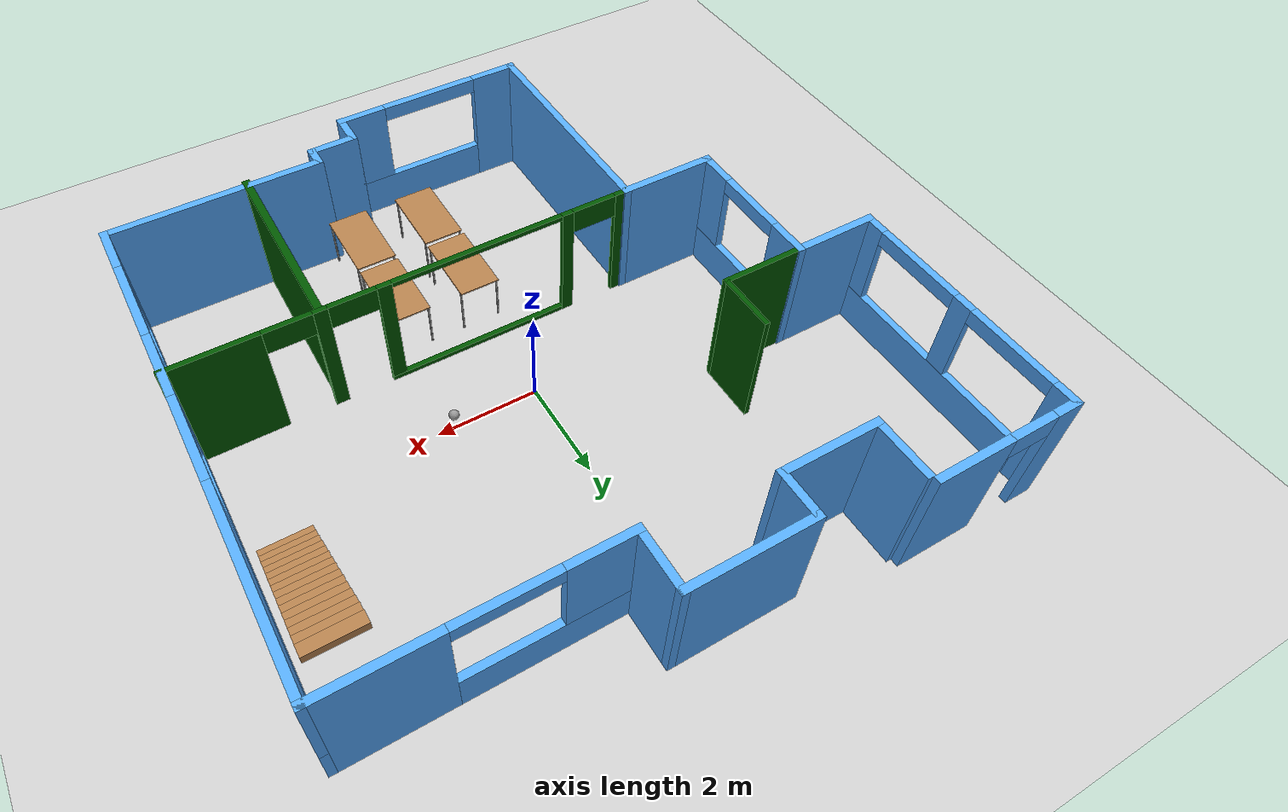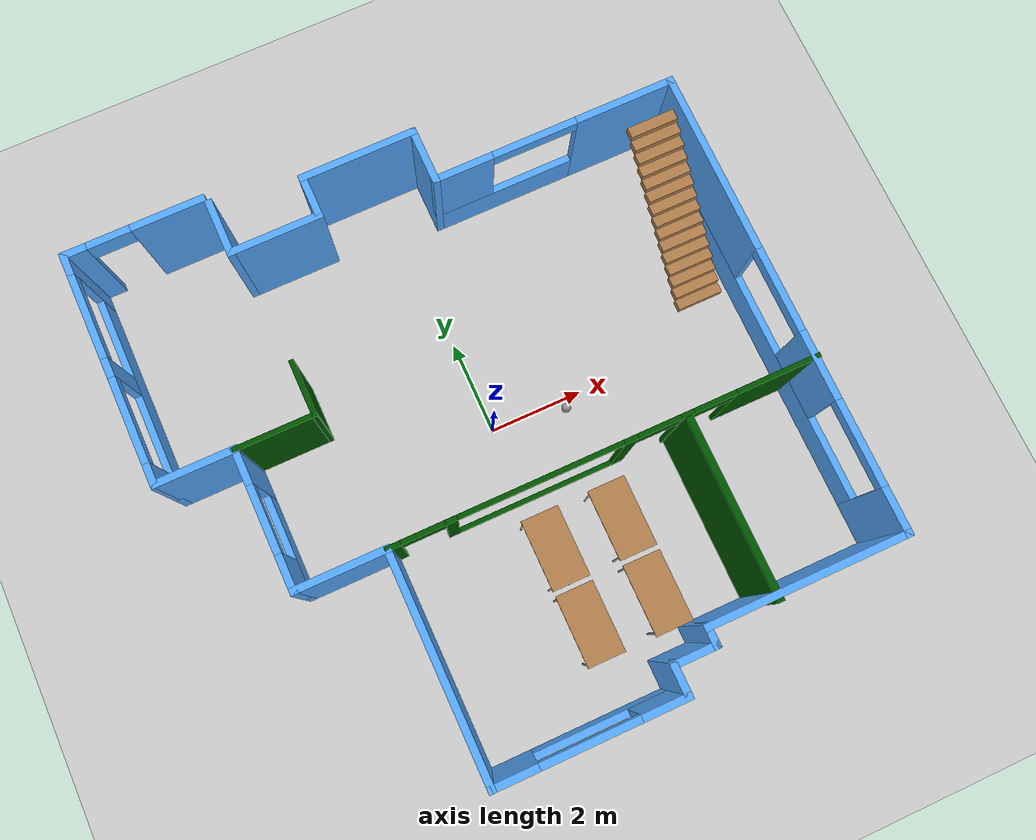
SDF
<sdf version="1.6">
 <world name="default">
  <model name="ground_plane">
   <static>1</static>
   <link name="link">
    <collision name="collision">
     <geometry><plane><normal>0 0 1</normal><size>100 100</size></plane></geometry>
     <surface>
      <contact><collide_bitmask>65535</collide_bitmask></contact>
      <friction><ode><mu>100</mu><mu2>50</mu2></ode></friction>
     </surface>
    </collision>
    <visual name="visual">
     <cast_shadows>0</cast_shadows>
     <geometry><plane><normal>0 0 1</normal><size>100 100</size></plane></geometry>
     <material>
      <script><uri>file://media/materials/scripts/gazebo.material</uri><name>Gazebo/Grey</name></script>
     </material>
    </visual>
   </link>
  </model>
  <model name="office_model">
   <pose>-0.208352 -0.072937 0 0 -0 0</pose>
   <link name="Stairs_0">
    <visual name="Stairs_0_Visual_0">
     <pose>5.38185 0.909839 0.083333 0 -0 -3.14159</pose>
     <geometry><box><size>1 0.218418 0.166667</size></box></geometry>
     <material>
      <script><uri>file://media/materials/scripts/gazebo.material</uri><name>Gazebo/Wood</name></script>
      <ambient>1 1 1 1</ambient>
     </material>
     <meta><layer>0</layer></meta>
    </visual>
    <collision name="Stairs_0_Collision_0">
     <geometry><box><size>1 0.218418 0.166667</size></box></geometry>
     <pose>5.38185 0.909839 0.083333 0 -0 -3.14159</pose>
    </collision>
    <visual name="Stairs_0_Visual_1">
     <pose>5.38185 1.12826 0.25 0 -0 -3.14159</pose>
     <geometry><box><size>1 0.218418 0.166667</size></box></geometry>
     <material>
      <script><uri>file://media/materials/scripts/gazebo.material</uri><name>Gazebo/Wood</name></script>
      <ambient>1 1 1 1</ambient>
     </material>
     <meta><layer>0</layer></meta>
    </visual>
    <collision name="Stairs_0_Collision_1">
     <geometry><box><size>1 0.218418 0.166667</size></box></geometry>
     <pose>5.38185 1.12826 0.25 0 -0 -3.14159</pose>
    </collision>
    <visual name="Stairs_0_Visual_2">
     <pose>5.38185 1.34668 0.416667 0 -0 -3.14159</pose>
     <geometry><box><size>1 0.218418 0.166667</size></box></geometry>
     <material>
      <script><uri>file://media/materials/scripts/gazebo.material</uri><name>Gazebo/Wood</name></script>
      <ambient>1 1 1 1</ambient>
     </material>
     <meta><layer>0</layer></meta>
    </visual>
    <collision name="Stairs_0_Collision_2">
     <geometry><box><size>1 0.218418 0.166667</size></box></geometry>
     <pose>5.38185 1.34668 0.416667 0 -0 -3.14159</pose>
    </collision>
    <visual name="Stairs_0_Visual_3">
     <pose>5.38185 1.56509 0.583333 0 -0 -3.14159</pose>
     <geometry><box><size>1 0.218418 0.166667</size></box></geometry>
     <material>
      <script><uri>file://media/materials/scripts/gazebo.material</uri><name>Gazebo/Wood</name></script>
      <ambient>1 1 1 1</ambient>
     </material>
     <meta><layer>0</layer></meta>
    </visual>
    <collision name="Stairs_0_Collision_3">
     <geometry><box><size>1 0.218418 0.166667</size></box></geometry>
     <pose>5.38185 1.56509 0.583333 0 -0 -3.14159</pose>
    </collision>
    <visual name="Stairs_0_Visual_4">
     <pose>5.38185 1.78351 0.75 0 -0 -3.14159</pose>
     <geometry><box><size>1 0.218418 0.166667</size></box></geometry>
     <material>
      <script><uri>file://media/materials/scripts/gazebo.material</uri><name>Gazebo/Wood</name></script>
      <ambient>1 1 1 1</ambient>
     </material>
     <meta><layer>0</layer></meta>
    </visual>
    <collision name="Stairs_0_Collision_4">
     <geometry><box><size>1 0.218418 0.166667</size></box></geometry>
     <pose>5.38185 1.78351 0.75 0 -0 -3.14159</pose>
    </collision>
    <visual name="Stairs_0_Visual_5">
     <pose>5.38185 2.00193 0.916667 0 -0 -3.14159</pose>
     <geometry><box><size>1 0.218418 0.166667</size></box></geometry>
     <material>
      <script><uri>file://media/materials/scripts/gazebo.material</uri><name>Gazebo/Wood</name></script>
      <ambient>1 1 1 1</ambient>
     </material>
     <meta><layer>0</layer></meta>
    </visual>
    <collision name="Stairs_0_Collision_5">
     <geometry><box><size>1 0.218418 0.166667</size></box></geometry>
     <pose>5.38185 2.00193 0.916667 0 -0 -3.14159</pose>
    </collision>
    <visual name="Stairs_0_Visual_6">
     <pose>5.38185 2.22035 1.08333 0 -0 -3.14159</pose>
     <geometry><box><size>1 0.218418 0.166667</size></box></geometry>
     <material>
      <script><uri>file://media/materials/scripts/gazebo.material</uri><name>Gazebo/Wood</name></script>
      <ambient>1 1 1 1</ambient>
     </material>
     <meta><layer>0</layer></meta>
    </visual>
    <collision name="Stairs_0_Collision_6">
     <geometry><box><size>1 0.218418 0.166667</size></box></geometry>
     <pose>5.38185 2.22035 1.08333 0 -0 -3.14159</pose>
    </collision>
    <visual name="Stairs_0_Visual_7">
     <pose>5.38185 2.43877 1.25 0 -0 -3.14159</pose>
     <geometry><box><size>1 0.218418 0.166667</size></box></geometry>
     <material>
      <script><uri>file://media/materials/scripts/gazebo.material</uri><name>Gazebo/Wood</name></script>
      <ambient>1 1 1 1</ambient>
     </material>
     <meta><layer>0</layer></meta>
    </visual>
    <collision name="Stairs_0_Collision_7">
     <geometry><box><size>1 0.218418 0.166667</size></box></geometry>
     <pose>5.38185 2.43877 1.25 0 -0 -3.14159</pose>
    </collision>
    <visual name="Stairs_0_Visual_8">
     <pose>5.38185 2.65718 1.41667 0 -0 -3.14159</pose>
     <geometry><box><size>1 0.218418 0.166667</size></box></geometry>
     <material>
      <script><uri>file://media/materials/scripts/gazebo.material</uri><name>Gazebo/Wood</name></script>
      <ambient>1 1 1 1</ambient>
     </material>
     <meta><layer>0</layer></meta>
    </visual>
    <collision name="Stairs_0_Collision_8">
     <geometry><box><size>1 0.218418 0.166667</size></box></geometry>
     <pose>5.38185 2.65718 1.41667 0 -0 -3.14159</pose>
    </collision>
    <visual name="Stairs_0_Visual_9">
     <pose>5.38185 2.8756 1.58333 0 -0 -3.14159</pose>
     <geometry><box><size>1 0.218418 0.166667</size></box></geometry>
     <material>
      <script><uri>file://media/materials/scripts/gazebo.material</uri><name>Gazebo/Wood</name></script>
      <ambient>1 1 1 1</ambient>
     </material>
     <meta><layer>0</layer></meta>
    </visual>
    <collision name="Stairs_0_Collision_9">
     <geometry><box><size>1 0.218418 0.166667</size></box></geometry>
     <pose>5.38185 2.8756 1.58333 0 -0 -3.14159</pose>
    </collision>
    <visual name="Stairs_0_Visual_10">
     <pose>5.38185 3.09402 1.75 0 -0 -3.14159</pose>
     <geometry><box><size>1 0.218418 0.166667</size></box></geometry>
     <material>
      <script><uri>file://media/materials/scripts/gazebo.material</uri><name>Gazebo/Wood</name></script>
      <ambient>1 1 1 1</ambient>
     </material>
     <meta><layer>0</layer></meta>
    </visual>
    <collision name="Stairs_0_Collision_10">
     <geometry><box><size>1 0.218418 0.166667</size></box></geometry>
     <pose>5.38185 3.09402 1.75 0 -0 -3.14159</pose>
    </collision>
    <visual name="Stairs_0_Visual_11">
     <pose>5.38185 3.31244 1.91667 0 -0 -3.14159</pose>
     <geometry><box><size>1 0.218418 0.166667</size></box></geometry>
     <material>
      <script><uri>file://media/materials/scripts/gazebo.material</uri><name>Gazebo/Wood</name></script>
      <ambient>1 1 1 1</ambient>
     </material>
     <meta><layer>0</layer></meta>
    </visual>
    <collision name="Stairs_0_Collision_11">
     <geometry><box><size>1 0.218418 0.166667</size></box></geometry>
     <pose>5.38185 3.31244 1.91667 0 -0 -3.14159</pose>
    </collision>
    <visual name="Stairs_0_Visual_12">
     <pose>5.38185 3.53086 2.08333 0 -0 -3.14159</pose>
     <geometry><box><size>1 0.218418 0.166667</size></box></geometry>
     <material>
      <script><uri>file://media/materials/scripts/gazebo.material</uri><name>Gazebo/Wood</name></script>
      <ambient>1 1 1 1</ambient>
     </material>
     <meta><layer>0</layer></meta>
    </visual>
    <collision name="Stairs_0_Collision_12">
     <geometry><box><size>1 0.218418 0.166667</size></box></geometry>
     <pose>5.38185 3.53086 2.08333 0 -0 -3.14159</pose>
    </collision>
    <visual name="Stairs_0_Visual_13">
     <pose>5.38185 3.74927 2.25 0 -0 -3.14159</pose>
     <geometry><box><size>1 0.218418 0.166667</size></box></geometry>
     <material>
      <script><uri>file://media/materials/scripts/gazebo.material</uri><name>Gazebo/Wood</name></script>
      <ambient>1 1 1 1</ambient>
     </material>
     <meta><layer>0</layer></meta>
    </visual>
    <collision name="Stairs_0_Collision_13">
     <geometry><box><size>1 0.218418 0.166667</size></box></geometry>
     <pose>5.38185 3.74927 2.25 0 -0 -3.14159</pose>
    </collision>
    <visual name="Stairs_0_Visual_14">
     <pose>5.38185 3.96769 2.41667 0 -0 -3.14159</pose>
     <geometry><box><size>1 0.218418 0.166667</size></box></geometry>
     <material>
      <script><uri>file://media/materials/scripts/gazebo.material</uri><name>Gazebo/Wood</name></script>
      <ambient>1 1 1 1</ambient>
     </material>
     <meta><layer>0</layer></meta>
    </visual>
    <collision name="Stairs_0_Collision_14">
     <geometry><box><size>1 0.218418 0.166667</size></box></geometry>
     <pose>5.38185 3.96769 2.41667 0 -0 -3.14159</pose>
    </collision>
   </link>
   <link name="Wall_0">
    <pose>-6.13735 3.72502 0 0 0 -1.5708</pose>
    <visual name="Wall_0_Visual_0">
     <pose>-2.24902 0 1.25 0 -0 0</pose>
     <geometry><box><size>0.501953 0.15 2.5</size></box></geometry>
     <material>
      <script><uri>file://media/materials/scripts/gazebo.material</uri><name>Gazebo/Grey</name></script>
      <ambient>0.333333 0.666667 1 1</ambient>
     </material>
     <meta><layer>0</layer></meta>
    </visual>
    <collision name="Wall_0_Collision_0">
     <geometry><box><size>0.501953 0.15 2.5</size></box></geometry>
     <pose>-2.24902 0 1.25 0 -0 0</pose>
    </collision>
    <visual name="Wall_0_Visual_1">
     <pose>0.250976 0 0.4 0 -0 0</pose>
     <geometry><box><size>4.49805 0.15 0.8</size></box></geometry>
     <material>
      <script><uri>file://media/materials/scripts/gazebo.material</uri><name>Gazebo/Grey</name></script>
      <ambient>0.333333 0.666667 1 1</ambient>
     </material>
     <meta><layer>0</layer></meta>
    </visual>
    <collision name="Wall_0_Collision_1">
     <geometry><box><size>4.49805 0.15 0.8</size></box></geometry>
     <pose>0.250976 0 0.4 0 -0 0</pose>
    </collision>
    <visual name="Wall_0_Visual_2">
     <pose>0.001649 0 1.65 0 -0 0</pose>
     <geometry><box><size>0.399392 0.15 1.7</size></box></geometry>
     <material>
      <script><uri>file://media/materials/scripts/gazebo.material</uri><name>Gazebo/Grey</name></script>
      <ambient>0.333333 0.666667 1 1</ambient>
     </material>
     <meta><layer>0</layer></meta>
    </visual>
    <collision name="Wall_0_Collision_2">
     <geometry><box><size>0.399392 0.15 1.7</size></box></geometry>
     <pose>0.001649 0 1.65 0 -0 0</pose>
    </collision>
    <visual name="Wall_0_Visual_3">
     <pose>2.25067 0 1.65 0 -0 0</pose>
     <geometry><box><size>0.498655 0.15 1.7</size></box></geometry>
     <material>
      <script><uri>file://media/materials/scripts/gazebo.material</uri><name>Gazebo/Grey</name></script>
      <ambient>0.333333 0.666667 1 1</ambient>
     </material>
     <meta><layer>0</layer></meta>
    </visual>
    <collision name="Wall_0_Collision_3">
     <geometry><box><size>0.498655 0.15 1.7</size></box></geometry>
     <pose>2.25067 0 1.65 0 -0 0</pose>
    </collision>
    <visual name="Wall_0_Visual_4">
     <pose>-1.09805 0 2.35 0 -0 0</pose>
     <geometry><box><size>1.8 0.15 0.3</size></box></geometry>
     <material>
      <script><uri>file://media/materials/scripts/gazebo.material</uri><name>Gazebo/Grey</name></script>
      <ambient>0.333333 0.666667 1 1</ambient>
     </material>
     <meta><layer>0</layer></meta>
    </visual>
    <collision name="Wall_0_Collision_4">
     <geometry><box><size>1.8 0.15 0.3</size></box></geometry>
     <pose>-1.09805 0 2.35 0 -0 0</pose>
    </collision>
    <visual name="Wall_0_Visual_5">
     <pose>1.10135 0 2.35 0 -0 0</pose>
     <geometry><box><size>1.8 0.15 0.3</size></box></geometry>
     <material>
      <script><uri>file://media/materials/scripts/gazebo.material</uri><name>Gazebo/Grey</name></script>
      <ambient>0.333333 0.666667 1 1</ambient>
     </material>
     <meta><layer>0</layer></meta>
    </visual>
    <collision name="Wall_0_Collision_5">
     <geometry><box><size>1.8 0.15 0.3</size></box></geometry>
     <pose>1.10135 0 2.35 0 -0 0</pose>
    </collision>
   </link>
   <link name="Wall_1">
    <collision name="Wall_1_Collision">
     <geometry><box><size>1.75 0.15 2.5</size></box></geometry>
     <pose>0 0 1.25 0 -0 0</pose>
    </collision>
    <visual name="Wall_1_Visual">
     <pose>0 0 1.25 0 -0 0</pose>
     <geometry><box><size>1.75 0.15 2.5</size></box></geometry>
     <material>
      <script><uri>file://media/materials/scripts/gazebo.material</uri><name>Gazebo/Grey</name></script>
      <ambient>0.333333 0.666667 1 1</ambient>
     </material>
     <meta><layer>0</layer></meta>
    </visual>
    <pose>-5.3375 1.29998 0 0 0 -5.4e-05</pose>
   </link>
   <link name="Wall_10">
    <collision name="Wall_10_Collision">
     <geometry><box><size>4.25 0.15 2.5</size></box></geometry>
     <pose>0 0 1.25 0 -0 0</pose>
    </collision>
    <visual name="Wall_10_Visual">
     <pose>0 0 1.25 0 -0 0</pose>
     <geometry><box><size>4.25 0.15 2.5</size></box></geometry>
     <material>
      <script><uri>file://media/materials/scripts/gazebo.material</uri><name>Gazebo/Grey</name></script>
      <ambient>0.333333 0.666667 1 1</ambient>
     </material>
     <meta><layer>0</layer></meta>
    </visual>
    <pose>4.06265 -5.19998 0 0 -0 0</pose>
   </link>
   <link name="Wall_11">
    <pose>6.11265 -0.274976 0 0 -0 1.5708</pose>
    <visual name="Wall_11_Visual_0">
     <pose>-4.49042 0 1.25 0 -0 0</pose>
     <geometry><box><size>1.01916 0.15 2.5</size></box></geometry>
     <material>
      <script><uri>file://media/materials/scripts/gazebo.material</uri><name>Gazebo/Grey</name></script>
      <ambient>0.333333 0.666667 1 1</ambient>
     </material>
     <meta><layer>0</layer></meta>
    </visual>
    <collision name="Wall_11_Collision_0">
     <geometry><box><size>1.01916 0.15 2.5</size></box></geometry>
     <pose>-4.49042 0 1.25 0 -0 0</pose>
    </collision>
    <visual name="Wall_11_Visual_1">
     <pose>0.509581 0 0.4 0 -0 0</pose>
     <geometry><box><size>8.98084 0.15 0.8</size></box></geometry>
     <material>
      <script><uri>file://media/materials/scripts/gazebo.material</uri><name>Gazebo/Grey</name></script>
      <ambient>0.333333 0.666667 1 1</ambient>
     </material>
     <meta><layer>0</layer></meta>
    </visual>
    <collision name="Wall_11_Collision_1">
     <geometry><box><size>8.98084 0.15 0.8</size></box></geometry>
     <pose>0.509581 0 0.4 0 -0 0</pose>
    </collision>
    <visual name="Wall_11_Visual_2">
     <pose>-1.45075 0 1.65 0 -0 0</pose>
     <geometry><box><size>1.46017 0.15 1.7</size></box></geometry>
     <material>
      <script><uri>file://media/materials/scripts/gazebo.material</uri><name>Gazebo/Grey</name></script>
      <ambient>0.333333 0.666667 1 1</ambient>
     </material>
     <meta><layer>0</layer></meta>
    </visual>
    <collision name="Wall_11_Collision_2">
     <geometry><box><size>1.46017 0.15 1.7</size></box></geometry>
     <pose>-1.45075 0 1.65 0 -0 0</pose>
    </collision>
    <visual name="Wall_11_Visual_3">
     <pose>3.03967 0 1.65 0 -0 0</pose>
     <geometry><box><size>3.92067 0.15 1.7</size></box></geometry>
     <material>
      <script><uri>file://media/materials/scripts/gazebo.material</uri><name>Gazebo/Grey</name></script>
      <ambient>0.333333 0.666667 1 1</ambient>
     </material>
     <meta><layer>0</layer></meta>
    </visual>
    <collision name="Wall_11_Collision_3">
     <geometry><box><size>3.92067 0.15 1.7</size></box></geometry>
     <pose>3.03967 0 1.65 0 -0 0</pose>
    </collision>
    <visual name="Wall_11_Visual_4">
     <pose>-3.08084 0 2.35 0 -0 0</pose>
     <geometry><box><size>1.8 0.15 0.3</size></box></geometry>
     <material>
      <script><uri>file://media/materials/scripts/gazebo.material</uri><name>Gazebo/Grey</name></script>
      <ambient>0.333333 0.666667 1 1</ambient>
     </material>
     <meta><layer>0</layer></meta>
    </visual>
    <collision name="Wall_11_Collision_4">
     <geometry><box><size>1.8 0.15 0.3</size></box></geometry>
     <pose>-3.08084 0 2.35 0 -0 0</pose>
    </collision>
    <visual name="Wall_11_Visual_5">
     <pose>0.179333 0 2.35 0 -0 0</pose>
     <geometry><box><size>1.8 0.15 0.3</size></box></geometry>
     <material>
      <script><uri>file://media/materials/scripts/gazebo.material</uri><name>Gazebo/Grey</name></script>
      <ambient>0.333333 0.666667 1 1</ambient>
     </material>
     <meta><layer>0</layer></meta>
    </visual>
    <collision name="Wall_11_Collision_5">
     <geometry><box><size>1.8 0.15 0.3</size></box></geometry>
     <pose>0.179333 0 2.35 0 -0 0</pose>
    </collision>
   </link>
   <link name="Wall_12">
    <pose>3.56265 4.65002 0 0 -0 3.14159</pose>
    <visual name="Wall_12_Visual_0">
     <pose>-1.55242 0 1.25 0 -0 0</pose>
     <geometry><box><size>2.14517 0.15 2.5</size></box></geometry>
     <material>
      <script><uri>file://media/materials/scripts/gazebo.material</uri><name>Gazebo/Grey</name></script>
      <ambient>0.333333 0.666667 1 1</ambient>
     </material>
     <meta><layer>0</layer></meta>
    </visual>
    <collision name="Wall_12_Collision_0">
     <geometry><box><size>2.14517 0.15 2.5</size></box></geometry>
     <pose>-1.55242 0 1.25 0 -0 0</pose>
    </collision>
    <visual name="Wall_12_Visual_1">
     <pose>1.07258 0 0.4 0 -0 0</pose>
     <geometry><box><size>3.10483 0.15 0.8</size></box></geometry>
     <material>
      <script><uri>file://media/materials/scripts/gazebo.material</uri><name>Gazebo/Grey</name></script>
      <ambient>0.333333 0.666667 1 1</ambient>
     </material>
     <meta><layer>0</layer></meta>
    </visual>
    <collision name="Wall_12_Collision_1">
     <geometry><box><size>3.10483 0.15 0.8</size></box></geometry>
     <pose>1.07258 0 0.4 0 -0 0</pose>
    </collision>
    <visual name="Wall_12_Visual_2">
     <pose>1.97259 0 1.65 0 -0 0</pose>
     <geometry><box><size>1.30483 0.15 1.7</size></box></geometry>
     <material>
      <script><uri>file://media/materials/scripts/gazebo.material</uri><name>Gazebo/Grey</name></script>
      <ambient>0.333333 0.666667 1 1</ambient>
     </material>
     <meta><layer>0</layer></meta>
    </visual>
    <collision name="Wall_12_Collision_2">
     <geometry><box><size>1.30483 0.15 1.7</size></box></geometry>
     <pose>1.97259 0 1.65 0 -0 0</pose>
    </collision>
    <visual name="Wall_12_Visual_3">
     <pose>0.42017 0 2.35 0 -0 0</pose>
     <geometry><box><size>1.8 0.15 0.3</size></box></geometry>
     <material>
      <script><uri>file://media/materials/scripts/gazebo.material</uri><name>Gazebo/Grey</name></script>
      <ambient>0.333333 0.666667 1 1</ambient>
     </material>
     <meta><layer>0</layer></meta>
    </visual>
    <collision name="Wall_12_Collision_3">
     <geometry><box><size>1.8 0.15 0.3</size></box></geometry>
     <pose>0.42017 0 2.35 0 -0 0</pose>
    </collision>
   </link>
   <link name="Wall_13">
    <collision name="Wall_13_Collision">
     <geometry><box><size>1.25 0.15 2.5</size></box></geometry>
     <pose>0 0 1.25 0 -0 0</pose>
    </collision>
    <visual name="Wall_13_Visual">
     <pose>0 0 1.25 0 -0 0</pose>
     <geometry><box><size>1.25 0.15 2.5</size></box></geometry>
     <material>
      <script><uri>file://media/materials/scripts/gazebo.material</uri><name>Gazebo/Grey</name></script>
      <ambient>0.333333 0.666667 1 1</ambient>
     </material>
     <meta><layer>0</layer></meta>
    </visual>
    <pose>1.01265 5.20002 0 0 -0 1.5708</pose>
   </link>
   <link name="Wall_14">
    <collision name="Wall_14_Collision">
     <geometry><box><size>2.5 0.15 2.5</size></box></geometry>
     <pose>0 0 1.25 0 -0 0</pose>
    </collision>
    <visual name="Wall_14_Visual">
     <pose>0 0 1.25 0 -0 0</pose>
     <geometry><box><size>2.5 0.15 2.5</size></box></geometry>
     <material>
      <script><uri>file://media/materials/scripts/gazebo.material</uri><name>Gazebo/Grey</name></script>
      <ambient>0.333333 0.666667 1 1</ambient>
     </material>
     <meta><layer>0</layer></meta>
    </visual>
    <pose>-0.162348 5.75002 0 0 -0 3.14159</pose>
   </link>
   <link name="Wall_15">
    <collision name="Wall_15_Collision">
     <geometry><box><size>1 0.15 2.5</size></box></geometry>
     <pose>0 0 1.25 0 -0 0</pose>
    </collision>
    <visual name="Wall_15_Visual">
     <pose>0 0 1.25 0 -0 0</pose>
     <geometry><box><size>1 0.15 2.5</size></box></geometry>
     <material>
      <script><uri>file://media/materials/scripts/gazebo.material</uri><name>Gazebo/Grey</name></script>
      <ambient>0.333333 0.666667 1 1</ambient>
     </material>
     <meta><layer>0</layer></meta>
    </visual>
    <pose>-1.33735 5.32502 0 0 0 -1.5708</pose>
   </link>
   <link name="Wall_16">
    <collision name="Wall_16_Collision">
     <geometry><box><size>2 0.15 2.5</size></box></geometry>
     <pose>0 0 1.25 0 -0 0</pose>
    </collision>
    <visual name="Wall_16_Visual">
     <pose>0 0 1.25 0 -0 0</pose>
     <geometry><box><size>2 0.15 2.5</size></box></geometry>
     <material>
      <script><uri>file://media/materials/scripts/gazebo.material</uri><name>Gazebo/Grey</name></script>
      <ambient>0.333333 0.666667 1 1</ambient>
     </material>
     <meta><layer>0</layer></meta>
    </visual>
    <pose>-2.26235 4.90002 0 0 -0 3.14159</pose>
   </link>
   <link name="Wall_2">
    <pose>-4.5375 -0.125019 0 0 0 -1.57069</pose>
    <visual name="Wall_2_Visual_0">
     <pose>-1.0985 0 1.25 0 -0 0</pose>
     <geometry><box><size>0.803008 0.15 2.5</size></box></geometry>
     <material>
      <script><uri>file://media/materials/scripts/gazebo.material</uri><name>Gazebo/Grey</name></script>
      <ambient>0.333333 0.666667 1 1</ambient>
     </material>
     <meta><layer>0</layer></meta>
    </visual>
    <collision name="Wall_2_Collision_0">
     <geometry><box><size>0.803008 0.15 2.5</size></box></geometry>
     <pose>-1.0985 0 1.25 0 -0 0</pose>
    </collision>
    <visual name="Wall_2_Visual_1">
     <pose>0.401504 0 0.4 0 -0 0</pose>
     <geometry><box><size>2.19699 0.15 0.8</size></box></geometry>
     <material>
      <script><uri>file://media/materials/scripts/gazebo.material</uri><name>Gazebo/Grey</name></script>
      <ambient>0.333333 0.666667 1 1</ambient>
     </material>
     <meta><layer>0</layer></meta>
    </visual>
    <collision name="Wall_2_Collision_1">
     <geometry><box><size>2.19699 0.15 0.8</size></box></geometry>
     <pose>0.401504 0 0.4 0 -0 0</pose>
    </collision>
    <visual name="Wall_2_Visual_2">
     <pose>1.1015 0 1.65 0 -0 0</pose>
     <geometry><box><size>0.796992 0.15 1.7</size></box></geometry>
     <material>
      <script><uri>file://media/materials/scripts/gazebo.material</uri><name>Gazebo/Grey</name></script>
      <ambient>0.333333 0.666667 1 1</ambient>
     </material>
     <meta><layer>0</layer></meta>
    </visual>
    <collision name="Wall_2_Collision_2">
     <geometry><box><size>0.796992 0.15 1.7</size></box></geometry>
     <pose>1.1015 0 1.65 0 -0 0</pose>
    </collision>
    <visual name="Wall_2_Visual_3">
     <pose>0.003008 0 2.35 0 -0 0</pose>
     <geometry><box><size>1.4 0.15 0.3</size></box></geometry>
     <material>
      <script><uri>file://media/materials/scripts/gazebo.material</uri><name>Gazebo/Grey</name></script>
      <ambient>0.333333 0.666667 1 1</ambient>
     </material>
     <meta><layer>0</layer></meta>
    </visual>
    <collision name="Wall_2_Collision_3">
     <geometry><box><size>1.4 0.15 0.3</size></box></geometry>
     <pose>0.003008 0 2.35 0 -0 0</pose>
    </collision>
   </link>
   <link name="Wall_20">
    <collision name="Wall_20_Collision">
     <geometry><box><size>1.25 0.15 2.5</size></box></geometry>
     <pose>0 0 1.25 0 -0 0</pose>
    </collision>
    <visual name="Wall_20_Visual">
     <pose>0 0 1.25 0 -0 0</pose>
     <geometry><box><size>1.25 0.15 2.5</size></box></geometry>
     <material>
      <script><uri>file://media/materials/scripts/gazebo.material</uri><name>Gazebo/Grey</name></script>
      <ambient>0.333333 0.666667 1 1</ambient>
     </material>
     <meta><layer>0</layer></meta>
    </visual>
    <pose>-3.18735 5.45002 0 0 -0 1.5708</pose>
   </link>
   <link name="Wall_24">
    <pose>-4.71235 6.15002 0 0 -0 0</pose>
    <visual name="Wall_24_Visual_0">
     <pose>-1.22846 0 1.25 0 -0 0</pose>
     <geometry><box><size>0.543083 0.15 2.5</size></box></geometry>
     <material>
      <script><uri>file://media/materials/scripts/gazebo.material</uri><name>Gazebo/Grey</name></script>
      <ambient>0.333333 0.666667 1 1</ambient>
     </material>
     <meta><layer>0</layer></meta>
    </visual>
    <collision name="Wall_24_Collision_0">
     <geometry><box><size>0.543083 0.15 2.5</size></box></geometry>
     <pose>-1.22846 0 1.25 0 -0 0</pose>
    </collision>
    <visual name="Wall_24_Visual_1">
     <pose>0.721542 0 1.25 0 -0 0</pose>
     <geometry><box><size>1.55692 0.15 2.5</size></box></geometry>
     <material>
      <script><uri>file://media/materials/scripts/gazebo.material</uri><name>Gazebo/Grey</name></script>
      <ambient>0.333333 0.666667 1 1</ambient>
     </material>
     <meta><layer>0</layer></meta>
    </visual>
    <collision name="Wall_24_Collision_1">
     <geometry><box><size>1.55692 0.15 2.5</size></box></geometry>
     <pose>0.721542 0 1.25 0 -0 0</pose>
    </collision>
    <visual name="Wall_24_Visual_2">
     <pose>-0.506917 0 2.25 0 -0 0</pose>
     <geometry><box><size>0.9 0.15 0.5</size></box></geometry>
     <material>
      <script><uri>file://media/materials/scripts/gazebo.material</uri><name>Gazebo/Grey</name></script>
      <ambient>0.333333 0.666667 1 1</ambient>
     </material>
     <meta><layer>0</layer></meta>
    </visual>
    <collision name="Wall_24_Collision_2">
     <geometry><box><size>0.9 0.15 0.5</size></box></geometry>
     <pose>-0.506917 0 2.25 0 -0 0</pose>
    </collision>
   </link>
   <link name="Wall_26">
    <collision name="Wall_26_Collision">
     <geometry><box><size>1.7003 0.1 2.5</size></box></geometry>
     <pose>0 0 1.25 0 -0 0</pose>
    </collision>
    <visual name="Wall_26_Visual">
     <pose>0 0 1.25 0 -0 0</pose>
     <geometry><box><size>1.7003 0.1 2.5</size></box></geometry>
     <material>
      <script><uri>file://media/materials/scripts/gazebo.material</uri><name>Gazebo/Grey</name></script>
      <ambient>0 0.333333 0 1</ambient>
     </material>
     <meta><layer>0</layer></meta>
    </visual>
    <pose>-3.73765 1.29994 0 0 -0 0</pose>
   </link>
   <link name="Wall_27">
    <collision name="Wall_27_Collision">
     <geometry><box><size>1.20009 0.1 2.5</size></box></geometry>
     <pose>0 0 1.25 0 -0 0</pose>
    </collision>
    <visual name="Wall_27_Visual">
     <pose>0 0 1.25 0 -0 0</pose>
     <geometry><box><size>1.20009 0.1 2.5</size></box></geometry>
     <material>
      <script><uri>file://media/materials/scripts/gazebo.material</uri><name>Gazebo/Grey</name></script>
      <ambient>0 0.333333 0 1</ambient>
     </material>
     <meta><layer>0</layer></meta>
    </visual>
    <pose>-2.93765 1.84994 0 0 -0 1.5708</pose>
   </link>
   <link name="Wall_3">
    <collision name="Wall_3_Collision">
     <geometry><box><size>2 0.15 2.5</size></box></geometry>
     <pose>0 0 1.25 0 -0 0</pose>
    </collision>
    <visual name="Wall_3_Visual">
     <pose>0 0 1.25 0 -0 0</pose>
     <geometry><box><size>2 0.15 2.5</size></box></geometry>
     <material>
      <script><uri>file://media/materials/scripts/gazebo.material</uri><name>Gazebo/Grey</name></script>
      <ambient>0.333333 0.666667 1 1</ambient>
     </material>
     <meta><layer>0</layer></meta>
    </visual>
    <pose>-3.6125 -1.55002 0 0 0 -4.7e-05</pose>
   </link>
   <link name="Wall_30">
    <pose>1.73735 -1.55006 0 0 -0 0</pose>
    <visual name="Wall_30_Visual_0">
     <pose>-4.31909 0 1.25 0 -0 0</pose>
     <geometry><box><size>0.312131 0.1 2.5</size></box></geometry>
     <material>
      <script><uri>file://media/materials/scripts/gazebo.material</uri><name>Gazebo/Grey</name></script>
      <ambient>0 0.333333 0 1</ambient>
     </material>
     <meta><layer>0</layer></meta>
    </visual>
    <collision name="Wall_30_Collision_0">
     <geometry><box><size>0.312131 0.1 2.5</size></box></geometry>
     <pose>-4.31909 0 1.25 0 -0 0</pose>
    </collision>
    <visual name="Wall_30_Visual_1">
     <pose>-3.14463 0 1.25 0 -0 0</pose>
     <geometry><box><size>0.236784 0.1 2.5</size></box></geometry>
     <material>
      <script><uri>file://media/materials/scripts/gazebo.material</uri><name>Gazebo/Grey</name></script>
      <ambient>0 0.333333 0 1</ambient>
     </material>
     <meta><layer>0</layer></meta>
    </visual>
    <collision name="Wall_30_Collision_1">
     <geometry><box><size>0.236784 0.1 2.5</size></box></geometry>
     <pose>-3.14463 0 1.25 0 -0 0</pose>
    </collision>
    <visual name="Wall_30_Visual_2">
     <pose>1.68198 0 1.25 0 -0 0</pose>
     <geometry><box><size>0.263956 0.1 2.5</size></box></geometry>
     <material>
      <script><uri>file://media/materials/scripts/gazebo.material</uri><name>Gazebo/Grey</name></script>
      <ambient>0 0.333333 0 1</ambient>
     </material>
     <meta><layer>0</layer></meta>
    </visual>
    <collision name="Wall_30_Collision_2">
     <geometry><box><size>0.263956 0.1 2.5</size></box></geometry>
     <pose>1.68198 0 1.25 0 -0 0</pose>
    </collision>
    <visual name="Wall_30_Visual_3">
     <pose>3.59455 0 1.25 0 -0 0</pose>
     <geometry><box><size>1.7612 0.1 2.5</size></box></geometry>
     <material>
      <script><uri>file://media/materials/scripts/gazebo.material</uri><name>Gazebo/Grey</name></script>
      <ambient>0 0.333333 0 1</ambient>
     </material>
     <meta><layer>0</layer></meta>
    </visual>
    <collision name="Wall_30_Collision_3">
     <geometry><box><size>1.7612 0.1 2.5</size></box></geometry>
     <pose>3.59455 0 1.25 0 -0 0</pose>
    </collision>
    <visual name="Wall_30_Visual_4">
     <pose>-1.18812 0 0.05 0 -0 0</pose>
     <geometry><box><size>3.67624 0.1 0.1</size></box></geometry>
     <material>
      <script><uri>file://media/materials/scripts/gazebo.material</uri><name>Gazebo/Grey</name></script>
      <ambient>0 0.333333 0 1</ambient>
     </material>
     <meta><layer>0</layer></meta>
    </visual>
    <collision name="Wall_30_Collision_4">
     <geometry><box><size>3.67624 0.1 0.1</size></box></geometry>
     <pose>-1.18812 0 0.05 0 -0 0</pose>
    </collision>
    <visual name="Wall_30_Visual_5">
     <pose>0.511882 0 1.3 0 -0 0</pose>
     <geometry><box><size>0.276235 0.1 2.4</size></box></geometry>
     <material>
      <script><uri>file://media/materials/scripts/gazebo.material</uri><name>Gazebo/Grey</name></script>
      <ambient>0 0.333333 0 1</ambient>
     </material>
     <meta><layer>0</layer></meta>
    </visual>
    <collision name="Wall_30_Collision_5">
     <geometry><box><size>0.276235 0.1 2.4</size></box></geometry>
     <pose>0.511882 0 1.3 0 -0 0</pose>
    </collision>
    <visual name="Wall_30_Visual_6">
     <pose>-3.71302 0 2.25 0 -0 0</pose>
     <geometry><box><size>0.9 0.1 0.5</size></box></geometry>
     <material>
      <script><uri>file://media/materials/scripts/gazebo.material</uri><name>Gazebo/Grey</name></script>
      <ambient>0 0.333333 0 1</ambient>
     </material>
     <meta><layer>0</layer></meta>
    </visual>
    <collision name="Wall_30_Collision_6">
     <geometry><box><size>0.9 0.1 0.5</size></box></geometry>
     <pose>-3.71302 0 2.25 0 -0 0</pose>
    </collision>
    <visual name="Wall_30_Visual_7">
     <pose>2.26396 0 2.25 0 -0 0</pose>
     <geometry><box><size>0.9 0.1 0.5</size></box></geometry>
     <material>
      <script><uri>file://media/materials/scripts/gazebo.material</uri><name>Gazebo/Grey</name></script>
      <ambient>0 0.333333 0 1</ambient>
     </material>
     <meta><layer>0</layer></meta>
    </visual>
    <collision name="Wall_30_Collision_7">
     <geometry><box><size>0.9 0.1 0.5</size></box></geometry>
     <pose>2.26396 0 2.25 0 -0 0</pose>
    </collision>
    <visual name="Wall_30_Visual_8">
     <pose>1.1 0 2.25 0 -0 0</pose>
     <geometry><box><size>0.9 0.1 0.5</size></box></geometry>
     <material>
      <script><uri>file://media/materials/scripts/gazebo.material</uri><name>Gazebo/Grey</name></script>
      <ambient>0 0.333333 0 1</ambient>
     </material>
     <meta><layer>0</layer></meta>
    </visual>
    <collision name="Wall_30_Collision_8">
     <geometry><box><size>0.9 0.1 0.5</size></box></geometry>
     <pose>1.1 0 2.25 0 -0 0</pose>
    </collision>
    <visual name="Wall_30_Visual_9">
     <pose>-1.32624 0 2.45 0 -0 0</pose>
     <geometry><box><size>3.4 0.1 0.1</size></box></geometry>
     <material>
      <script><uri>file://media/materials/scripts/gazebo.material</uri><name>Gazebo/Grey</name></script>
      <ambient>0 0.333333 0 1</ambient>
     </material>
     <meta><layer>0</layer></meta>
    </visual>
    <collision name="Wall_30_Collision_9">
     <geometry><box><size>3.4 0.1 0.1</size></box></geometry>
     <pose>-1.32624 0 2.45 0 -0 0</pose>
    </collision>
   </link>
   <link name="Wall_32">
    <collision name="Wall_32_Collision">
     <geometry><box><size>3.75 0.15 2.5</size></box></geometry>
     <pose>0 0 1.25 0 -0 0</pose>
    </collision>
    <visual name="Wall_32_Visual">
     <pose>0 0 1.25 0 -0 0</pose>
     <geometry><box><size>3.75 0.15 2.5</size></box></geometry>
     <material>
      <script><uri>file://media/materials/scripts/gazebo.material</uri><name>Gazebo/Grey</name></script>
      <ambient>0 0.333333 0 1</ambient>
     </material>
     <meta><layer>0</layer></meta>
    </visual>
    <pose>3.42067 -3.47295 0 0 -0 1.5708</pose>
   </link>
   <link name="Wall_4">
    <collision name="Wall_4_Collision">
     <geometry><box><size>4.75 0.15 2.5</size></box></geometry>
     <pose>0 0 1.25 0 -0 0</pose>
    </collision>
    <visual name="Wall_4_Visual">
     <pose>0 0 1.25 0 -0 0</pose>
     <geometry><box><size>4.75 0.15 2.5</size></box></geometry>
     <material>
      <script><uri>file://media/materials/scripts/gazebo.material</uri><name>Gazebo/Grey</name></script>
      <ambient>0.333333 0.666667 1 1</ambient>
     </material>
     <meta><layer>0</layer></meta>
    </visual>
    <pose>-2.6875 -3.85002 0 0 0 -1.57073</pose>
   </link>
   <link name="Wall_5">
    <pose>-0.762348 -6.14998 0 0 -0 0</pose>
    <visual name="Wall_5_Visual_0">
     <pose>-1.49905 0 1.25 0 -0 0</pose>
     <geometry><box><size>1.00191 0.15 2.5</size></box></geometry>
     <material>
      <script><uri>file://media/materials/scripts/gazebo.material</uri><name>Gazebo/Grey</name></script>
      <ambient>0.333333 0.666667 1 1</ambient>
     </material>
     <meta><layer>0</layer></meta>
    </visual>
    <collision name="Wall_5_Collision_0">
     <geometry><box><size>1.00191 0.15 2.5</size></box></geometry>
     <pose>-1.49905 0 1.25 0 -0 0</pose>
    </collision>
    <visual name="Wall_5_Visual_1">
     <pose>0.500954 0 0.4 0 -0 0</pose>
     <geometry><box><size>2.99809 0.15 0.8</size></box></geometry>
     <material>
      <script><uri>file://media/materials/scripts/gazebo.material</uri><name>Gazebo/Grey</name></script>
      <ambient>0.333333 0.666667 1 1</ambient>
     </material>
     <meta><layer>0</layer></meta>
    </visual>
    <collision name="Wall_5_Collision_1">
     <geometry><box><size>2.99809 0.15 0.8</size></box></geometry>
     <pose>0.500954 0 0.4 0 -0 0</pose>
    </collision>
    <visual name="Wall_5_Visual_2">
     <pose>1.50095 0 1.65 0 -0 0</pose>
     <geometry><box><size>0.998091 0.15 1.7</size></box></geometry>
     <material>
      <script><uri>file://media/materials/scripts/gazebo.material</uri><name>Gazebo/Grey</name></script>
      <ambient>0.333333 0.666667 1 1</ambient>
     </material>
     <meta><layer>0</layer></meta>
    </visual>
    <collision name="Wall_5_Collision_2">
     <geometry><box><size>0.998091 0.15 1.7</size></box></geometry>
     <pose>1.50095 0 1.65 0 -0 0</pose>
    </collision>
    <visual name="Wall_5_Visual_3">
     <pose>0.001909 0 2.35 0 -0 0</pose>
     <geometry><box><size>2 0.15 0.3</size></box></geometry>
     <material>
      <script><uri>file://media/materials/scripts/gazebo.material</uri><name>Gazebo/Grey</name></script>
      <ambient>0.333333 0.666667 1 1</ambient>
     </material>
     <meta><layer>0</layer></meta>
    </visual>
    <collision name="Wall_5_Collision_3">
     <geometry><box><size>2 0.15 0.3</size></box></geometry>
     <pose>0.001909 0 2.35 0 -0 0</pose>
    </collision>
   </link>
   <link name="Wall_7">
    <collision name="Wall_7_Collision">
     <geometry><box><size>0.75 0.15 2.5</size></box></geometry>
     <pose>0 0 1.25 0 -0 0</pose>
    </collision>
    <visual name="Wall_7_Visual">
     <pose>0 0 1.25 0 -0 0</pose>
     <geometry><box><size>0.75 0.15 2.5</size></box></geometry>
     <material>
      <script><uri>file://media/materials/scripts/gazebo.material</uri><name>Gazebo/Grey</name></script>
      <ambient>0.333333 0.666667 1 1</ambient>
     </material>
     <meta><layer>0</layer></meta>
    </visual>
    <pose>1.16265 -5.84998 0 0 -0 1.5708</pose>
   </link>
   <link name="Wall_8">
    <collision name="Wall_8_Collision">
     <geometry><box><size>1 0.15 2.5</size></box></geometry>
     <pose>0 0 1.25 0 -0 0</pose>
    </collision>
    <visual name="Wall_8_Visual">
     <pose>0 0 1.25 0 -0 0</pose>
     <geometry><box><size>1 0.15 2.5</size></box></geometry>
     <material>
      <script><uri>file://media/materials/scripts/gazebo.material</uri><name>Gazebo/Grey</name></script>
      <ambient>0.333333 0.666667 1 1</ambient>
     </material>
     <meta><layer>0</layer></meta>
    </visual>
    <pose>1.58765 -5.54998 0 0 -0 0</pose>
   </link>
   <link name="Wall_9">
    <collision name="Wall_9_Collision">
     <geometry><box><size>0.5 0.15 2.5</size></box></geometry>
     <pose>0 0 1.25 0 -0 0</pose>
    </collision>
    <visual name="Wall_9_Visual">
     <pose>0 0 1.25 0 -0 0</pose>
     <geometry><box><size>0.5 0.15 2.5</size></box></geometry>
     <material>
      <script><uri>file://media/materials/scripts/gazebo.material</uri><name>Gazebo/Grey</name></script>
      <ambient>0.333333 0.666667 1 1</ambient>
     </material>
     <meta><layer>0</layer></meta>
    </visual>
    <pose>2.01265 -5.37498 0 0 -0 1.5708</pose>
   </link>
   <static>1</static>
  </model>
  <model name="table">
   <static>1</static>
   <link name="link">
    <collision name="surface">
     <pose>0 0 1 0 -0 0</pose>
     <geometry><box><size>1.5 0.8 0.03</size></box></geometry>
     <surface><friction><ode><mu>0.6</mu><mu2>0.6</mu2></ode></friction></surface>
    </collision>
    <visual name="visual1">
     <pose>0 0 1 0 -0 0</pose>
     <geometry><box><size>1.5 0.8 0.03</size></box></geometry>
     <material>
      <script><uri>file://media/materials/scripts/gazebo.material</uri><name>Gazebo/Wood</name></script>
     </material>
    </visual>
    <collision name="front_left_leg">
     <pose>0.68 0.38 0.5 0 -0 0</pose>
     <geometry><cylinder><radius>0.02</radius><length>1</length></cylinder></geometry>
    </collision>
    <visual name="front_left_leg">
     <pose>0.68 0.38 0.5 0 -0 0</pose>
     <geometry><cylinder><radius>0.02</radius><length>1</length></cylinder></geometry>
     <material>
      <script><uri>file://media/materials/scripts/gazebo.material</uri><name>Gazebo/Grey</name></script>
     </material>
    </visual>
    <collision name="front_right_leg">
     <pose>0.68 -0.38 0.5 0 -0 0</pose>
     <geometry><cylinder><radius>0.02</radius><length>1</length></cylinder></geometry>
    </collision>
    <visual name="front_right_leg">
     <pose>0.68 -0.38 0.5 0 -0 0</pose>
     <geometry><cylinder><radius>0.02</radius><length>1</length></cylinder></geometry>
     <material>
      <script><uri>file://media/materials/scripts/gazebo.material</uri><name>Gazebo/Grey</name></script>
     </material>
    </visual>
    <collision name="back_right_leg">
     <pose>-0.68 -0.38 0.5 0 -0 0</pose>
     <geometry><cylinder><radius>0.02</radius><length>1</length></cylinder></geometry>
    </collision>
    <visual name="back_right_leg">
     <pose>-0.68 -0.38 0.5 0 -0 0</pose>
     <geometry><cylinder><radius>0.02</radius><length>1</length></cylinder></geometry>
     <material>
      <script><uri>file://media/materials/scripts/gazebo.material</uri><name>Gazebo/Grey</name></script>
     </material>
    </visual>
    <collision name="back_left_leg">
     <pose>-0.68 0.38 0.5 0 -0 0</pose>
     <geometry><cylinder><radius>0.02</radius><length>1</length></cylinder></geometry>
    </collision>
    <visual name="back_left_leg">
     <pose>-0.68 0.38 0.5 0 -0 0</pose>
     <geometry><cylinder><radius>0.02</radius><length>1</length></cylinder></geometry>
     <material>
      <script><uri>file://media/materials/scripts/gazebo.material</uri><name>Gazebo/Grey</name></script>
     </material>
    </visual>
   </link>
   <pose>1.5 -2.8 0 0 -0 1.57075</pose>
  </model>
  <model name="table_clone">
   <static>1</static>
   <link name="link">
    <collision name="surface">
     <pose>0 0 1 0 -0 0</pose>
     <geometry><box><size>1.5 0.8 0.03</size></box></geometry>
     <surface><friction><ode><mu>0.6</mu><mu2>0.6</mu2></ode></friction></surface>
    </collision>
    <visual name="visual1">
     <pose>0 0 1 0 -0 0</pose>
     <geometry><box><size>1.5 0.8 0.03</size></box></geometry>
     <material>
      <script><uri>file://media/materials/scripts/gazebo.material</uri><name>Gazebo/Wood</name></script>
     </material>
    </visual>
    <collision name="front_left_leg">
     <pose>0.68 0.38 0.5 0 -0 0</pose>
     <geometry><cylinder><radius>0.02</radius><length>1</length></cylinder></geometry>
    </collision>
    <visual name="front_left_leg">
     <pose>0.68 0.38 0.5 0 -0 0</pose>
     <geometry><cylinder><radius>0.02</radius><length>1</length></cylinder></geometry>
     <material>
      <script><uri>file://media/materials/scripts/gazebo.material</uri><name>Gazebo/Grey</name></script>
     </material>
    </visual>
    <collision name="front_right_leg">
     <pose>0.68 -0.38 0.5 0 -0 0</pose>
     <geometry><cylinder><radius>0.02</radius><length>1</length></cylinder></geometry>
    </collision>
    <visual name="front_right_leg">
     <pose>0.68 -0.38 0.5 0 -0 0</pose>
     <geometry><cylinder><radius>0.02</radius><length>1</length></cylinder></geometry>
     <material>
      <script><uri>file://media/materials/scripts/gazebo.material</uri><name>Gazebo/Grey</name></script>
     </material>
    </visual>
    <collision name="back_right_leg">
     <pose>-0.68 -0.38 0.5 0 -0 0</pose>
     <geometry><cylinder><radius>0.02</radius><length>1</length></cylinder></geometry>
    </collision>
    <visual name="back_right_leg">
     <pose>-0.68 -0.38 0.5 0 -0 0</pose>
     <geometry><cylinder><radius>0.02</radius><length>1</length></cylinder></geometry>
     <material>
      <script><uri>file://media/materials/scripts/gazebo.material</uri><name>Gazebo/Grey</name></script>
     </material>
    </visual>
    <collision name="back_left_leg">
     <pose>-0.68 0.38 0.5 0 -0 0</pose>
     <geometry><cylinder><radius>0.02</radius><length>1</length></cylinder></geometry>
    </collision>
    <visual name="back_left_leg">
     <pose>-0.68 0.38 0.5 0 -0 0</pose>
     <geometry><cylinder><radius>0.02</radius><length>1</length></cylinder></geometry>
     <material>
      <script><uri>file://media/materials/scripts/gazebo.material</uri><name>Gazebo/Grey</name></script>
     </material>
    </visual>
   </link>
   <pose>1.5 -4.4 0 0 -0 1.57075</pose>
  </model>
  <model name="table_clone_clone">
   <static>1</static>
   <link name="link">
    <collision name="surface">
     <pose>0 0 1 0 -0 0</pose>
     <geometry><box><size>1.5 0.8 0.03</size></box></geometry>
     <surface><friction><ode><mu>0.6</mu><mu2>0.6</mu2></ode></friction></surface>
    </collision>
    <visual name="visual1">
     <pose>0 0 1 0 -0 0</pose>
     <geometry><box><size>1.5 0.8 0.03</size></box></geometry>
     <material>
      <script><uri>file://media/materials/scripts/gazebo.material</uri><name>Gazebo/Wood</name></script>
     </material>
    </visual>
    <collision name="front_left_leg">
     <pose>0.68 0.38 0.5 0 -0 0</pose>
     <geometry><cylinder><radius>0.02</radius><length>1</length></cylinder></geometry>
    </collision>
    <visual name="front_left_leg">
     <pose>0.68 0.38 0.5 0 -0 0</pose>
     <geometry><cylinder><radius>0.02</radius><length>1</length></cylinder></geometry>
     <material>
      <script><uri>file://media/materials/scripts/gazebo.material</uri><name>Gazebo/Grey</name></script>
     </material>
    </visual>
    <collision name="front_right_leg">
     <pose>0.68 -0.38 0.5 0 -0 0</pose>
     <geometry><cylinder><radius>0.02</radius><length>1</length></cylinder></geometry>
    </collision>
    <visual name="front_right_leg">
     <pose>0.68 -0.38 0.5 0 -0 0</pose>
     <geometry><cylinder><radius>0.02</radius><length>1</length></cylinder></geometry>
     <material>
      <script><uri>file://media/materials/scripts/gazebo.material</uri><name>Gazebo/Grey</name></script>
     </material>
    </visual>
    <collision name="back_right_leg">
     <pose>-0.68 -0.38 0.5 0 -0 0</pose>
     <geometry><cylinder><radius>0.02</radius><length>1</length></cylinder></geometry>
    </collision>
    <visual name="back_right_leg">
     <pose>-0.68 -0.38 0.5 0 -0 0</pose>
     <geometry><cylinder><radius>0.02</radius><length>1</length></cylinder></geometry>
     <material>
      <script><uri>file://media/materials/scripts/gazebo.material</uri><name>Gazebo/Grey</name></script>
     </material>
    </visual>
    <collision name="back_left_leg">
     <pose>-0.68 0.38 0.5 0 -0 0</pose>
     <geometry><cylinder><radius>0.02</radius><length>1</length></cylinder></geometry>
    </collision>
    <visual name="back_left_leg">
     <pose>-0.68 0.38 0.5 0 -0 0</pose>
     <geometry><cylinder><radius>0.02</radius><length>1</length></cylinder></geometry>
     <material>
      <script><uri>file://media/materials/scripts/gazebo.material</uri><name>Gazebo/Grey</name></script>
     </material>
    </visual>
   </link>
   <pose>0.05 -2.8 0 0 -0 1.57075</pose>
  </model>
  <model name="table_clone_clone_0">
   <static>1</static>
   <link name="link">
    <collision name="surface">
     <pose>0 0 1 0 -0 0</pose>
     <geometry><box><size>1.5 0.8 0.03</size></box></geometry>
     <surface><friction><ode><mu>0.6</mu><mu2>0.6</mu2></ode></friction></surface>
    </collision>
    <visual name="visual1">
     <pose>0 0 1 0 -0 0</pose>
     <geometry><box><size>1.5 0.8 0.03</size></box></geometry>
     <material>
      <script><uri>file://media/materials/scripts/gazebo.material</uri><name>Gazebo/Wood</name></script>
     </material>
    </visual>
    <collision name="front_left_leg">
     <pose>0.68 0.38 0.5 0 -0 0</pose>
     <geometry><cylinder><radius>0.02</radius><length>1</length></cylinder></geometry>
    </collision>
    <visual name="front_left_leg">
     <pose>0.68 0.38 0.5 0 -0 0</pose>
     <geometry><cylinder><radius>0.02</radius><length>1</length></cylinder></geometry>
     <material>
      <script><uri>file://media/materials/scripts/gazebo.material</uri><name>Gazebo/Grey</name></script>
     </material>
    </visual>
    <collision name="front_right_leg">
     <pose>0.68 -0.38 0.5 0 -0 0</pose>
     <geometry><cylinder><radius>0.02</radius><length>1</length></cylinder></geometry>
    </collision>
    <visual name="front_right_leg">
     <pose>0.68 -0.38 0.5 0 -0 0</pose>
     <geometry><cylinder><radius>0.02</radius><length>1</length></cylinder></geometry>
     <material>
      <script><uri>file://media/materials/scripts/gazebo.material</uri><name>Gazebo/Grey</name></script>
     </material>
    </visual>
    <collision name="back_right_leg">
     <pose>-0.68 -0.38 0.5 0 -0 0</pose>
     <geometry><cylinder><radius>0.02</radius><length>1</length></cylinder></geometry>
    </collision>
    <visual name="back_right_leg">
     <pose>-0.68 -0.38 0.5 0 -0 0</pose>
     <geometry><cylinder><radius>0.02</radius><length>1</length></cylinder></geometry>
     <material>
      <script><uri>file://media/materials/scripts/gazebo.material</uri><name>Gazebo/Grey</name></script>
     </material>
    </visual>
    <collision name="back_left_leg">
     <pose>-0.68 0.38 0.5 0 -0 0</pose>
     <geometry><cylinder><radius>0.02</radius><length>1</length></cylinder></geometry>
    </collision>
    <visual name="back_left_leg">
     <pose>-0.68 0.38 0.5 0 -0 0</pose>
     <geometry><cylinder><radius>0.02</radius><length>1</length></cylinder></geometry>
     <material>
      <script><uri>file://media/materials/scripts/gazebo.material</uri><name>Gazebo/Grey</name></script>
     </material>
    </visual>
   </link>
   <pose>0.05 -4.4 0 0 -0 1.57075</pose>
  </model>
  <model name="my_ball">
   <link name="link_0">
    <inertial>
     <mass>1</mass>
     <inertia><ixx>0.1</ixx><ixy>0</ixy><ixz>0</ixz><iyy>0.1</iyy><iyz>0</iyz><izz>0.1</izz></inertia>
    </inertial>
    <visual name="visual">
     <geometry><sphere><radius>0.1</radius></sphere></geometry>
     <material>
      <lighting>1</lighting>
      <script><uri>file://media/materials/scripts/gazebo.material</uri><name>Gazebo/Grey</name></script>
      <shader type="pixel"><normal_map>__default__</normal_map></shader>
      <ambient>1 1 1 1</ambient>
      <diffuse>1 1 1 1</diffuse>
      <specular>1 1 1 1</specular>
      <emissive>1 1 1 1</emissive>
     </material>
    </visual>
    <collision name="collision">
     <geometry><sphere><radius>0.1</radius></sphere></geometry>
     <surface>
      <friction>
       <ode><mu>1</mu><mu2>1</mu2><fdir1>0 0 0</fdir1><slip1>0</slip1><slip2>0</slip2></ode>
       <torsional>
        <coefficient>1</coefficient>
        <patch_radius>0</patch_radius>
        <surface_radius>0</surface_radius>
        <use_patch_radius>1</use_patch_radius>
        <ode><slip>0</slip></ode>
       </torsional>
      </friction>
      <bounce><restitution_coefficient>0</restitution_coefficient><threshold>1e+06</threshold></bounce>
      <contact>
       <collide_without_contact>0</collide_without_contact>
       <collide_without_contact_bitmask>1</collide_without_contact_bitmask>
       <collide_bitmask>1</collide_bitmask>
       <ode>
        <soft_cfm>0</soft_cfm>
        <soft_erp>0.2</soft_erp>
        <kp>1e+13</kp>
        <kd>1</kd>
        <max_vel>0.01</max_vel>
        <min_depth>0</min_depth>
       </ode>
       <bullet>
        <split_impulse>1</split_impulse>
        <split_impulse_penetration_threshold>-0.01</split_impulse_penetration_threshold>
        <soft_cfm>0</soft_cfm>
        <soft_erp>0.2</soft_erp>
        <kp>1e+13</kp>
        <kd>1</kd>
       </bullet>
      </contact>
     </surface>
    </collision>
   </link>
   <static>0</static>
   <pose>1.58719 -0.205687 0.1 0 -0 0</pose>
  </model>
 </world>
</sdf>
